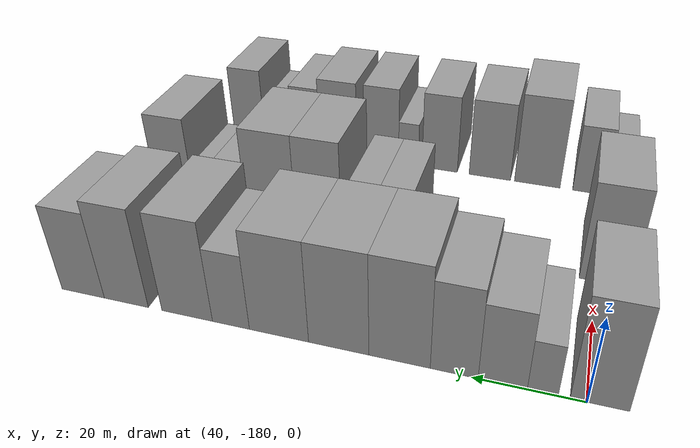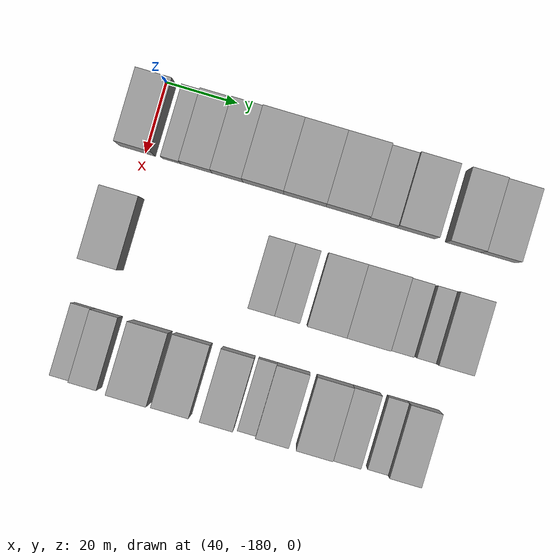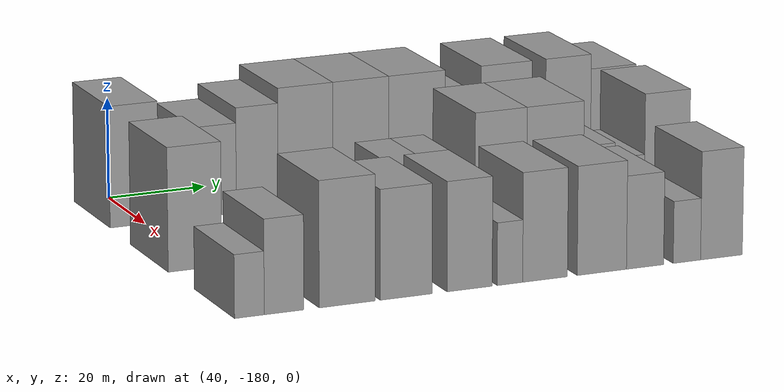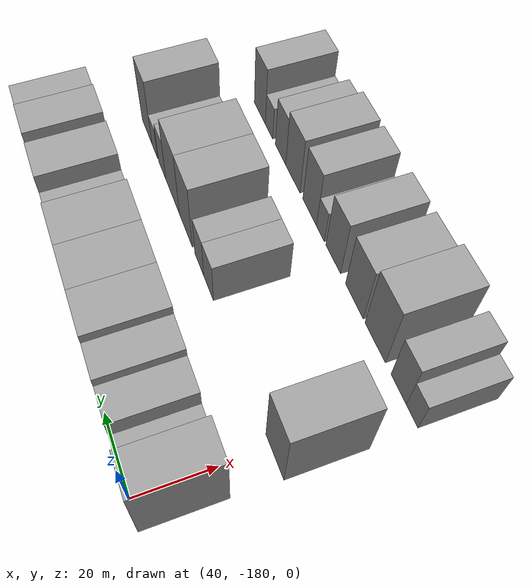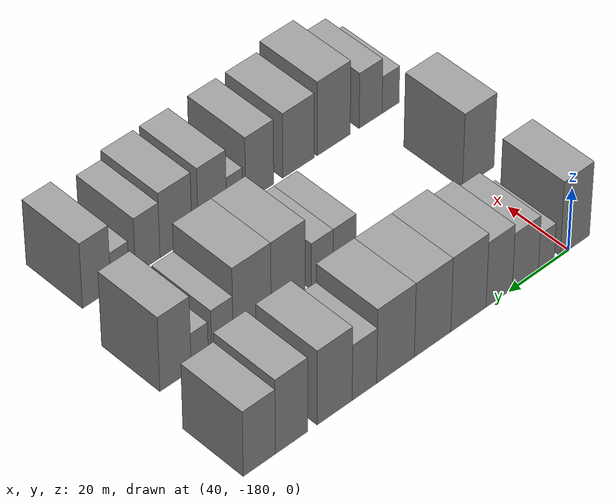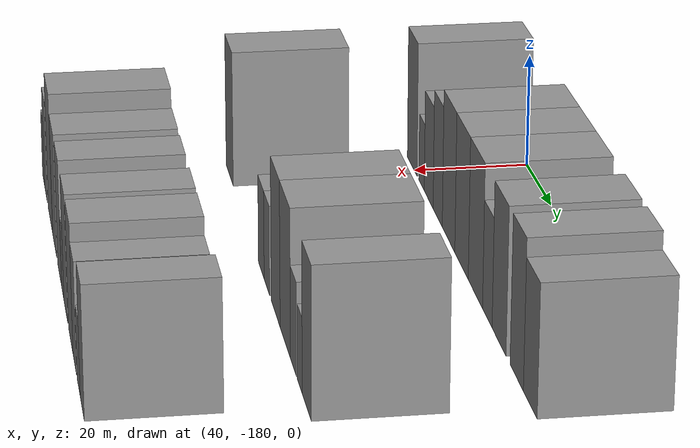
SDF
<sdf version="1.6">
 <world name="default">
  <model name="building_20">
   <static>1</static>
   <pose>50.0000 -182.1305 0 0.000000 0.000000 0.000000</pose>
   <link name="link">
    <pose>0 0 12.00 0 0 0</pose>
    <collision name="collision"><geometry><box><size>20.0000 9.9312 24.0000</size></box></geometry></collision>
    <visual name="visual">
     <cast_shadows>0</cast_shadows>
     <geometry><box><size>20.0000 9.9312 24.0000</size></box></geometry>
     <material>
      <script>
       <uri>model://grey_wall/materials/scripts</uri>
       <uri>model://grey_wall/materials/textures</uri>
       <name>vrc/grey_wall</name>
      </script>
     </material>
    </visual>
   </link>
  </model>
  <model name="building_21">
   <static>1</static>
   <pose>50.0000 -172.4947 0 0.000000 0.000000 0.000000</pose>
   <link name="link">
    <pose>0 0 6.00 0 0 0</pose>
    <collision name="collision"><geometry><box><size>20.0000 5.3402 12.0000</size></box></geometry></collision>
    <visual name="visual">
     <cast_shadows>0</cast_shadows>
     <geometry><box><size>20.0000 5.3402 12.0000</size></box></geometry>
     <material>
      <script>
       <uri>model://grey_wall/materials/scripts</uri>
       <uri>model://grey_wall/materials/textures</uri>
       <name>vrc/grey_wall</name>
      </script>
     </material>
    </visual>
   </link>
  </model>
  <model name="building_22">
   <static>1</static>
   <pose>50.0000 -165.4881 0 0.000000 0.000000 0.000000</pose>
   <link name="link">
    <pose>0 0 9.00 0 0 0</pose>
    <collision name="collision"><geometry><box><size>20.0000 8.6730 18.0000</size></box></geometry></collision>
    <visual name="visual">
     <cast_shadows>0</cast_shadows>
     <geometry><box><size>20.0000 8.6730 18.0000</size></box></geometry>
     <material>
      <script>
       <uri>model://grey_wall/materials/scripts</uri>
       <uri>model://grey_wall/materials/textures</uri>
       <name>vrc/grey_wall</name>
      </script>
     </material>
    </visual>
   </link>
  </model>
  <model name="building_23">
   <static>1</static>
   <pose>50.0000 -156.8079 0 0.000000 0.000000 0.000000</pose>
   <link name="link">
    <pose>0 0 10.50 0 0 0</pose>
    <collision name="collision"><geometry><box><size>20.0000 8.6874 21.0000</size></box></geometry></collision>
    <visual name="visual">
     <cast_shadows>0</cast_shadows>
     <geometry><box><size>20.0000 8.6874 21.0000</size></box></geometry>
     <material>
      <script>
       <uri>model://grey_wall/materials/scripts</uri>
       <uri>model://grey_wall/materials/textures</uri>
       <name>vrc/grey_wall</name>
      </script>
     </material>
    </visual>
   </link>
  </model>
  <model name="building_24">
   <static>1</static>
   <pose>50.0000 -146.7155 0 0.000000 0.000000 0.000000</pose>
   <link name="link">
    <pose>0 0 12.00 0 0 0</pose>
    <collision name="collision"><geometry><box><size>20.0000 11.4976 24.0000</size></box></geometry></collision>
    <visual name="visual">
     <cast_shadows>0</cast_shadows>
     <geometry><box><size>20.0000 11.4976 24.0000</size></box></geometry>
     <material>
      <script>
       <uri>model://grey_wall/materials/scripts</uri>
       <uri>model://grey_wall/materials/textures</uri>
       <name>vrc/grey_wall</name>
      </script>
     </material>
    </visual>
   </link>
  </model>
  <model name="building_25">
   <static>1</static>
   <pose>50.0000 -135.0739 0 0.000000 0.000000 0.000000</pose>
   <link name="link">
    <pose>0 0 12.00 0 0 0</pose>
    <collision name="collision"><geometry><box><size>20.0000 11.7856 24.0000</size></box></geometry></collision>
    <visual name="visual">
     <cast_shadows>0</cast_shadows>
     <geometry><box><size>20.0000 11.7856 24.0000</size></box></geometry>
     <material>
      <script>
       <uri>model://grey_wall/materials/scripts</uri>
       <uri>model://grey_wall/materials/textures</uri>
       <name>vrc/grey_wall</name>
      </script>
     </material>
    </visual>
   </link>
  </model>
  <model name="building_26">
   <static>1</static>
   <pose>50.0000 -123.1845 0 0.000000 0.000000 0.000000</pose>
   <link name="link">
    <pose>0 0 12.00 0 0 0</pose>
    <collision name="collision"><geometry><box><size>20.0000 11.9932 24.0000</size></box></geometry></collision>
    <visual name="visual">
     <cast_shadows>0</cast_shadows>
     <geometry><box><size>20.0000 11.9932 24.0000</size></box></geometry>
     <material>
      <script>
       <uri>model://grey_wall/materials/scripts</uri>
       <uri>model://grey_wall/materials/textures</uri>
       <name>vrc/grey_wall</name>
      </script>
     </material>
    </visual>
   </link>
  </model>
  <model name="building_27">
   <static>1</static>
   <pose>50.0000 -113.3230 0 0.000000 0.000000 0.000000</pose>
   <link name="link">
    <pose>0 0 9.00 0 0 0</pose>
    <collision name="collision"><geometry><box><size>20.0000 7.7298 18.0000</size></box></geometry></collision>
    <visual name="visual">
     <cast_shadows>0</cast_shadows>
     <geometry><box><size>20.0000 7.7298 18.0000</size></box></geometry>
     <material>
      <script>
       <uri>model://grey_wall/materials/scripts</uri>
       <uri>model://grey_wall/materials/textures</uri>
       <name>vrc/grey_wall</name>
      </script>
     </material>
    </visual>
   </link>
  </model>
  <model name="building_28">
   <static>1</static>
   <pose>50.0000 -104.0030 0 0.000000 0.000000 0.000000</pose>
   <link name="link">
    <pose>0 0 12.00 0 0 0</pose>
    <collision name="collision"><geometry><box><size>20.0000 10.9103 24.0000</size></box></geometry></collision>
    <visual name="visual">
     <cast_shadows>0</cast_shadows>
     <geometry><box><size>20.0000 10.9103 24.0000</size></box></geometry>
     <material>
      <script>
       <uri>model://grey_wall/materials/scripts</uri>
       <uri>model://grey_wall/materials/textures</uri>
       <name>vrc/grey_wall</name>
      </script>
     </material>
    </visual>
   </link>
  </model>
  <model name="building_29">
   <static>1</static>
   <pose>50.0000 -90.6180 0 0.000000 0.000000 0.000000</pose>
   <link name="link">
    <pose>0 0 12.00 0 0 0</pose>
    <collision name="collision"><geometry><box><size>20.0000 9.8597 24.0000</size></box></geometry></collision>
    <visual name="visual">
     <cast_shadows>0</cast_shadows>
     <geometry><box><size>20.0000 9.8597 24.0000</size></box></geometry>
     <material>
      <script>
       <uri>model://grey_wall/materials/scripts</uri>
       <uri>model://grey_wall/materials/textures</uri>
       <name>vrc/grey_wall</name>
      </script>
     </material>
    </visual>
   </link>
  </model>
  <model name="building_30">
   <static>1</static>
   <pose>50.0000 -80.7948 0 0.000000 0.000000 0.000000</pose>
   <link name="link">
    <pose>0 0 10.50 0 0 0</pose>
    <collision name="collision"><geometry><box><size>20.0000 9.7866 21.0000</size></box></geometry></collision>
    <visual name="visual">
     <cast_shadows>0</cast_shadows>
     <geometry><box><size>20.0000 9.7866 21.0000</size></box></geometry>
     <material>
      <script>
       <uri>model://grey_wall/materials/scripts</uri>
       <uri>model://grey_wall/materials/textures</uri>
       <name>vrc/grey_wall</name>
      </script>
     </material>
    </visual>
   </link>
  </model>
  <model name="building_103">
   <static>1</static>
   <pose>82.0000 -182.1213 0 0.000000 0.000000 0.000000</pose>
   <link name="link">
    <pose>0 0 12.00 0 0 0</pose>
    <collision name="collision"><geometry><box><size>20.0000 10.6720 24.0000</size></box></geometry></collision>
    <visual name="visual">
     <cast_shadows>0</cast_shadows>
     <geometry><box><size>20.0000 10.6720 24.0000</size></box></geometry>
     <material>
      <script>
       <uri>model://grey_wall/materials/scripts</uri>
       <uri>model://grey_wall/materials/textures</uri>
       <name>vrc/grey_wall</name>
      </script>
     </material>
    </visual>
   </link>
  </model>
  <model name="building_104">
   <static>1</static>
   <pose>82.0000 -137.7175 0 0.000000 0.000000 0.000000</pose>
   <link name="link">
    <pose>0 0 7.50 0 0 0</pose>
    <collision name="collision"><geometry><box><size>20.0000 7.3786 15.0000</size></box></geometry></collision>
    <visual name="visual">
     <cast_shadows>0</cast_shadows>
     <geometry><box><size>20.0000 7.3786 15.0000</size></box></geometry>
     <material>
      <script>
       <uri>model://grey_wall/materials/scripts</uri>
       <uri>model://grey_wall/materials/textures</uri>
       <name>vrc/grey_wall</name>
      </script>
     </material>
    </visual>
   </link>
  </model>
  <model name="building_105">
   <static>1</static>
   <pose>82.0000 -130.5434 0 0.000000 0.000000 0.000000</pose>
   <link name="link">
    <pose>0 0 7.50 0 0 0</pose>
    <collision name="collision"><geometry><box><size>20.0000 6.9695 15.0000</size></box></geometry></collision>
    <visual name="visual">
     <cast_shadows>0</cast_shadows>
     <geometry><box><size>20.0000 6.9695 15.0000</size></box></geometry>
     <material>
      <script>
       <uri>model://grey_wall/materials/scripts</uri>
       <uri>model://grey_wall/materials/textures</uri>
       <name>vrc/grey_wall</name>
      </script>
     </material>
    </visual>
   </link>
  </model>
  <model name="building_106">
   <static>1</static>
   <pose>82.0000 -119.6819 0 0.000000 0.000000 0.000000</pose>
   <link name="link">
    <pose>0 0 12.00 0 0 0</pose>
    <collision name="collision"><geometry><box><size>20.0000 10.7537 24.0000</size></box></geometry></collision>
    <visual name="visual">
     <cast_shadows>0</cast_shadows>
     <geometry><box><size>20.0000 10.7537 24.0000</size></box></geometry>
     <material>
      <script>
       <uri>model://grey_wall/materials/scripts</uri>
       <uri>model://grey_wall/materials/textures</uri>
       <name>vrc/grey_wall</name>
      </script>
     </material>
    </visual>
   </link>
  </model>
  <model name="building_107">
   <static>1</static>
   <pose>82.0000 -108.3235 0 0.000000 0.000000 0.000000</pose>
   <link name="link">
    <pose>0 0 12.00 0 0 0</pose>
    <collision name="collision"><geometry><box><size>20.0000 11.9630 24.0000</size></box></geometry></collision>
    <visual name="visual">
     <cast_shadows>0</cast_shadows>
     <geometry><box><size>20.0000 11.9630 24.0000</size></box></geometry>
     <material>
      <script>
       <uri>model://grey_wall/materials/scripts</uri>
       <uri>model://grey_wall/materials/textures</uri>
       <name>vrc/grey_wall</name>
      </script>
     </material>
    </visual>
   </link>
  </model>
  <model name="building_108">
   <static>1</static>
   <pose>82.0000 -98.9969 0 0.000000 0.000000 0.000000</pose>
   <link name="link">
    <pose>0 0 7.50 0 0 0</pose>
    <collision name="collision"><geometry><box><size>20.0000 6.6903 15.0000</size></box></geometry></collision>
    <visual name="visual">
     <cast_shadows>0</cast_shadows>
     <geometry><box><size>20.0000 6.6903 15.0000</size></box></geometry>
     <material>
      <script>
       <uri>model://grey_wall/materials/scripts</uri>
       <uri>model://grey_wall/materials/textures</uri>
       <name>vrc/grey_wall</name>
      </script>
     </material>
    </visual>
   </link>
  </model>
  <model name="building_109">
   <static>1</static>
   <pose>82.0000 -92.0117 0 0.000000 0.000000 0.000000</pose>
   <link name="link">
    <pose>0 0 6.00 0 0 0</pose>
    <collision name="collision"><geometry><box><size>20.0000 5.2801 12.0000</size></box></geometry></collision>
    <visual name="visual">
     <cast_shadows>0</cast_shadows>
     <geometry><box><size>20.0000 5.2801 12.0000</size></box></geometry>
     <material>
      <script>
       <uri>model://grey_wall/materials/scripts</uri>
       <uri>model://grey_wall/materials/textures</uri>
       <name>vrc/grey_wall</name>
      </script>
     </material>
    </visual>
   </link>
  </model>
  <model name="building_110">
   <static>1</static>
   <pose>82.0000 -84.5606 0 0.000000 0.000000 0.000000</pose>
   <link name="link">
    <pose>0 0 12.00 0 0 0</pose>
    <collision name="collision"><geometry><box><size>20.0000 9.6222 24.0000</size></box></geometry></collision>
    <visual name="visual">
     <cast_shadows>0</cast_shadows>
     <geometry><box><size>20.0000 9.6222 24.0000</size></box></geometry>
     <material>
      <script>
       <uri>model://grey_wall/materials/scripts</uri>
       <uri>model://grey_wall/materials/textures</uri>
       <name>vrc/grey_wall</name>
      </script>
     </material>
    </visual>
   </link>
  </model>
  <model name="building_181">
   <static>1</static>
   <pose>114.0000 -183.9991 0 0.000000 0.000000 0.000000</pose>
   <link name="link">
    <pose>0 0 6.00 0 0 0</pose>
    <collision name="collision"><geometry><box><size>20.0000 5.7916 12.0000</size></box></geometry></collision>
    <visual name="visual">
     <cast_shadows>0</cast_shadows>
     <geometry><box><size>20.0000 5.7916 12.0000</size></box></geometry>
     <material>
      <script>
       <uri>model://grey_wall/materials/scripts</uri>
       <uri>model://grey_wall/materials/textures</uri>
       <name>vrc/grey_wall</name>
      </script>
     </material>
    </visual>
   </link>
  </model>
  <model name="building_182">
   <static>1</static>
   <pose>114.0000 -177.2337 0 0.000000 0.000000 0.000000</pose>
   <link name="link">
    <pose>0 0 9.00 0 0 0</pose>
    <collision name="collision"><geometry><box><size>20.0000 7.7394 18.0000</size></box></geometry></collision>
    <visual name="visual">
     <cast_shadows>0</cast_shadows>
     <geometry><box><size>20.0000 7.7394 18.0000</size></box></geometry>
     <material>
      <script>
       <uri>model://grey_wall/materials/scripts</uri>
       <uri>model://grey_wall/materials/textures</uri>
       <name>vrc/grey_wall</name>
      </script>
     </material>
    </visual>
   </link>
  </model>
  <model name="building_183">
   <static>1</static>
   <pose>114.0000 -164.8367 0 0.000000 0.000000 0.000000</pose>
   <link name="link">
    <pose>0 0 12.00 0 0 0</pose>
    <collision name="collision"><geometry><box><size>20.0000 11.0545 24.0000</size></box></geometry></collision>
    <visual name="visual">
     <cast_shadows>0</cast_shadows>
     <geometry><box><size>20.0000 11.0545 24.0000</size></box></geometry>
     <material>
      <script>
       <uri>model://grey_wall/materials/scripts</uri>
       <uri>model://grey_wall/materials/textures</uri>
       <name>vrc/grey_wall</name>
      </script>
     </material>
    </visual>
   </link>
  </model>
  <model name="building_184">
   <static>1</static>
   <pose>114.0000 -153.1508 0 0.000000 0.000000 0.000000</pose>
   <link name="link">
    <pose>0 0 10.50 0 0 0</pose>
    <collision name="collision"><geometry><box><size>20.0000 10.3174 21.0000</size></box></geometry></collision>
    <visual name="visual">
     <cast_shadows>0</cast_shadows>
     <geometry><box><size>20.0000 10.3174 21.0000</size></box></geometry>
     <material>
      <script>
       <uri>model://grey_wall/materials/scripts</uri>
       <uri>model://grey_wall/materials/textures</uri>
       <name>vrc/grey_wall</name>
      </script>
     </material>
    </visual>
   </link>
  </model>
  <model name="building_185">
   <static>1</static>
   <pose>114.0000 -140.4501 0 0.000000 0.000000 0.000000</pose>
   <link name="link">
    <pose>0 0 10.50 0 0 0</pose>
    <collision name="collision"><geometry><box><size>20.0000 9.0841 21.0000</size></box></geometry></collision>
    <visual name="visual">
     <cast_shadows>0</cast_shadows>
     <geometry><box><size>20.0000 9.0841 21.0000</size></box></geometry>
     <material>
      <script>
       <uri>model://grey_wall/materials/scripts</uri>
       <uri>model://grey_wall/materials/textures</uri>
       <name>vrc/grey_wall</name>
      </script>
     </material>
    </visual>
   </link>
  </model>
  <model name="building_186">
   <static>1</static>
   <pose>114.0000 -132.3299 0 0.000000 0.000000 0.000000</pose>
   <link name="link">
    <pose>0 0 6.00 0 0 0</pose>
    <collision name="collision"><geometry><box><size>20.0000 5.1564 12.0000</size></box></geometry></collision>
    <visual name="visual">
     <cast_shadows>0</cast_shadows>
     <geometry><box><size>20.0000 5.1564 12.0000</size></box></geometry>
     <material>
      <script>
       <uri>model://grey_wall/materials/scripts</uri>
       <uri>model://grey_wall/materials/textures</uri>
       <name>vrc/grey_wall</name>
      </script>
     </material>
    </visual>
   </link>
  </model>
  <model name="building_187">
   <static>1</static>
   <pose>114.0000 -125.1985 0 0.000000 0.000000 0.000000</pose>
   <link name="link">
    <pose>0 0 10.50 0 0 0</pose>
    <collision name="collision"><geometry><box><size>20.0000 9.1065 21.0000</size></box></geometry></collision>
    <visual name="visual">
     <cast_shadows>0</cast_shadows>
     <geometry><box><size>20.0000 9.1065 21.0000</size></box></geometry>
     <material>
      <script>
       <uri>model://grey_wall/materials/scripts</uri>
       <uri>model://grey_wall/materials/textures</uri>
       <name>vrc/grey_wall</name>
      </script>
     </material>
    </visual>
   </link>
  </model>
  <model name="building_188">
   <static>1</static>
   <pose>114.0000 -113.5858 0 0.000000 0.000000 0.000000</pose>
   <link name="link">
    <pose>0 0 10.50 0 0 0</pose>
    <collision name="collision"><geometry><box><size>20.0000 10.1189 21.0000</size></box></geometry></collision>
    <visual name="visual">
     <cast_shadows>0</cast_shadows>
     <geometry><box><size>20.0000 10.1189 21.0000</size></box></geometry>
     <material>
      <script>
       <uri>model://grey_wall/materials/scripts</uri>
       <uri>model://grey_wall/materials/textures</uri>
       <name>vrc/grey_wall</name>
      </script>
     </material>
    </visual>
   </link>
  </model>
  <model name="building_189">
   <static>1</static>
   <pose>114.0000 -104.6871 0 0.000000 0.000000 0.000000</pose>
   <link name="link">
    <pose>0 0 9.00 0 0 0</pose>
    <collision name="collision"><geometry><box><size>20.0000 7.6784 18.0000</size></box></geometry></collision>
    <visual name="visual">
     <cast_shadows>0</cast_shadows>
     <geometry><box><size>20.0000 7.6784 18.0000</size></box></geometry>
     <material>
      <script>
       <uri>model://grey_wall/materials/scripts</uri>
       <uri>model://grey_wall/materials/textures</uri>
       <name>vrc/grey_wall</name>
      </script>
     </material>
    </visual>
   </link>
  </model>
  <model name="building_190">
   <static>1</static>
   <pose>114.0000 -96.0028 0 0.000000 0.000000 0.000000</pose>
   <link name="link">
    <pose>0 0 6.00 0 0 0</pose>
    <collision name="collision"><geometry><box><size>20.0000 5.6902 12.0000</size></box></geometry></collision>
    <visual name="visual">
     <cast_shadows>0</cast_shadows>
     <geometry><box><size>20.0000 5.6902 12.0000</size></box></geometry>
     <material>
      <script>
       <uri>model://grey_wall/materials/scripts</uri>
       <uri>model://grey_wall/materials/textures</uri>
       <name>vrc/grey_wall</name>
      </script>
     </material>
    </visual>
   </link>
  </model>
  <model name="building_191">
   <static>1</static>
   <pose>114.0000 -88.7873 0 0.000000 0.000000 0.000000</pose>
   <link name="link">
    <pose>0 0 10.50 0 0 0</pose>
    <collision name="collision"><geometry><box><size>20.0000 8.7409 21.0000</size></box></geometry></collision>
    <visual name="visual">
     <cast_shadows>0</cast_shadows>
     <geometry><box><size>20.0000 8.7409 21.0000</size></box></geometry>
     <material>
      <script>
       <uri>model://grey_wall/materials/scripts</uri>
       <uri>model://grey_wall/materials/textures</uri>
       <name>vrc/grey_wall</name>
      </script>
     </material>
    </visual>
   </link>
  </model>
 </world>
</sdf>
